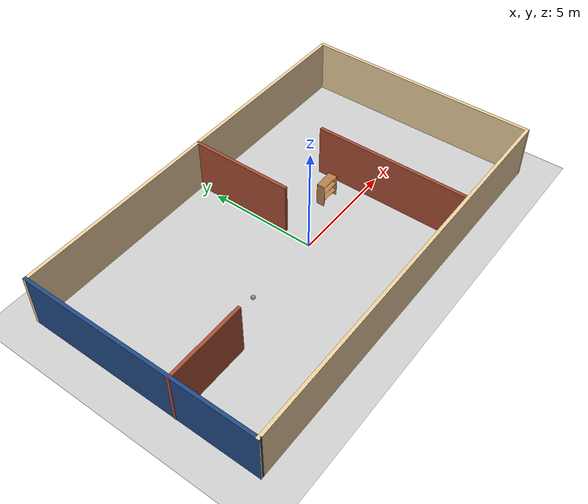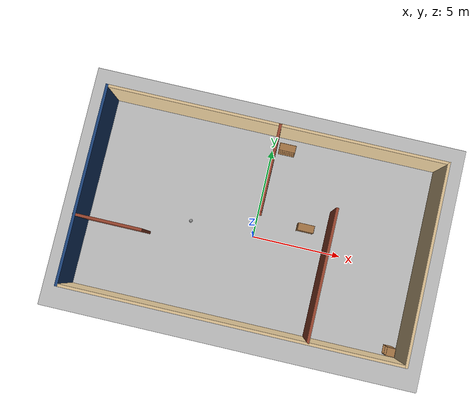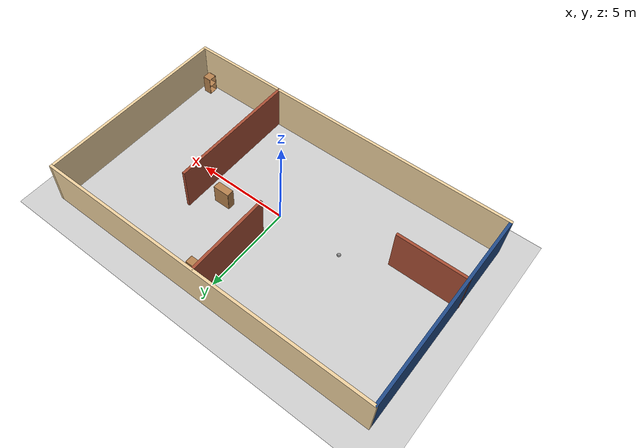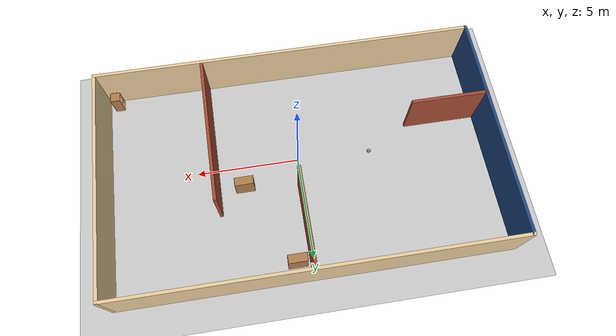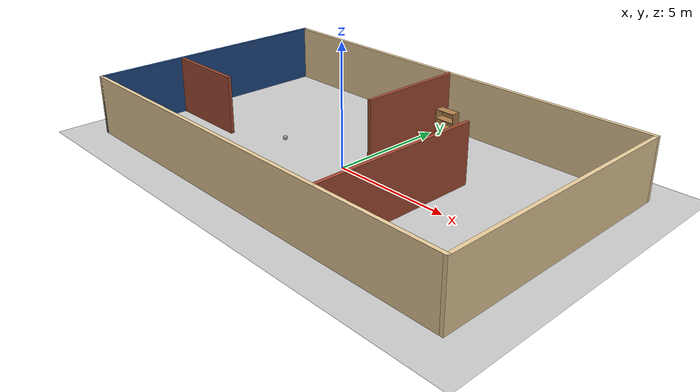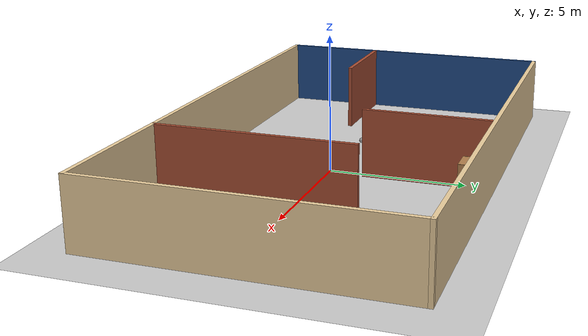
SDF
<sdf version="1.6">
 <world name="default">
  <plugin name="welcomeGazebo" filename="libwelcomeGazebo.so"/>
  <light name="sun" type="directional">
   <pose>0 0 10 0 -0 0</pose>
   <diffuse>0.8 0.8 0.8 1</diffuse>
   <specular>0.2 0.2 0.2 1</specular>
   <attenuation>
    <range>1000</range>
    <constant>0.9</constant>
    <linear>0.01</linear>
    <quadratic>0.001</quadratic>
   </attenuation>
   <direction>-0.5 0.1 -0.9</direction>
  </light>
  <model name="ground_plane">
   <static>1</static>
   <link name="link">
    <collision name="collision">
     <geometry><plane><normal>0 0 1</normal><size>100 100</size></plane></geometry>
     <surface>
      <contact><collide_bitmask>65535</collide_bitmask></contact>
      <friction><ode><mu>100</mu><mu2>50</mu2></ode></friction>
     </surface>
    </collision>
    <visual name="visual">
     <cast_shadows>0</cast_shadows>
     <geometry><plane><normal>0 0 1</normal><size>100 100</size></plane></geometry>
     <material>
      <script><uri>file://media/materials/scripts/gazebo.material</uri><name>Gazebo/Grey</name></script>
     </material>
    </visual>
   </link>
  </model>
  <gravity>0 0 -9.8</gravity>
  <magnetic_field>6e-06 2.3e-05 -4.2e-05</magnetic_field>
  <atmosphere type="adiabatic"/>
  <physics name="default_physics" default="0" type="ode">
   <max_step_size>0.001</max_step_size>
   <real_time_factor>1</real_time_factor>
   <real_time_update_rate>1000</real_time_update_rate>
  </physics>
  <scene><ambient>0.4 0.4 0.4 1</ambient><background>0.7 0.7 0.7 1</background><shadows>1</shadows></scene>
  <audio><device>default</device></audio>
  <spherical_coordinates>
   <surface_model>EARTH_WGS84</surface_model>
   <latitude_deg>0</latitude_deg>
   <longitude_deg>0</longitude_deg>
   <elevation>0</elevation>
   <heading_deg>0</heading_deg>
  </spherical_coordinates>
  <model name="Building_A">
   <pose>-0.058631 0.547242 0 0 -0 0</pose>
   <link name="Wall_0">
    <collision name="Wall_0_Collision">
     <geometry><box><size>11 0.15 2.5</size></box></geometry>
     <pose>0 0 1.25 0 -0 0</pose>
    </collision>
    <visual name="Wall_0_Visual">
     <pose>0 0 1.25 0 -0 0</pose>
     <geometry><box><size>11 0.15 2.5</size></box></geometry>
     <material>
      <script><uri>file://media/materials/scripts/gazebo.material</uri><name>Gazebo/Grey</name></script>
      <ambient>0.12549 0.290196 0.529412 1</ambient>
     </material>
     <meta><layer>0</layer></meta>
    </visual>
    <pose>-9.295 -0 0 0 -0 -1.5708</pose>
   </link>
   <link name="Wall_1">
    <collision name="Wall_1_Collision">
     <geometry><box><size>18.75 0.15 2.5</size></box></geometry>
     <pose>0 0 1.25 0 -0 0</pose>
    </collision>
    <visual name="Wall_1_Visual">
     <pose>0 0 1.25 0 -0 0</pose>
     <geometry><box><size>18.75 0.15 2.5</size></box></geometry>
     <material>
      <script><uri>file://media/materials/scripts/gazebo.material</uri><name>Gazebo/Grey</name></script>
      <ambient>0.921569 0.807843 0.615686 1</ambient>
     </material>
     <meta><layer>0</layer></meta>
    </visual>
    <pose>0.005 -5.425 0 0 -0 0</pose>
   </link>
   <link name="Wall_2">
    <collision name="Wall_2_Collision">
     <geometry><box><size>11 0.15 2.5</size></box></geometry>
     <pose>0 0 1.25 0 -0 0</pose>
    </collision>
    <visual name="Wall_2_Visual">
     <pose>0 0 1.25 0 -0 0</pose>
     <geometry><box><size>11 0.15 2.5</size></box></geometry>
     <material>
      <script><uri>file://media/materials/scripts/gazebo.material</uri><name>Gazebo/Grey</name></script>
      <ambient>0.921569 0.807843 0.615686 1</ambient>
     </material>
     <meta><layer>0</layer></meta>
    </visual>
    <pose>9.305 -0 0 0 -0 1.5708</pose>
   </link>
   <link name="Wall_3">
    <collision name="Wall_3_Collision">
     <geometry><box><size>18.75 0.15 2.5</size></box></geometry>
     <pose>0 0 1.25 0 -0 0</pose>
    </collision>
    <visual name="Wall_3_Visual">
     <pose>0 0 1.25 0 -0 0</pose>
     <geometry><box><size>18.75 0.15 2.5</size></box></geometry>
     <material>
      <script><uri>file://media/materials/scripts/gazebo.material</uri><name>Gazebo/Grey</name></script>
      <ambient>0.921569 0.807843 0.615686 1</ambient>
     </material>
     <meta><layer>0</layer></meta>
    </visual>
    <pose>0.005 5.425 0 0 -0 3.14159</pose>
   </link>
   <link name="Wall_5">
    <collision name="Wall_5_Collision">
     <geometry><box><size>4.75 0.15 2.5</size></box></geometry>
     <pose>0 0 1.25 0 -0 0</pose>
    </collision>
    <visual name="Wall_5_Visual">
     <pose>0 0 1.25 0 -0 0</pose>
     <geometry><box><size>4.75 0.15 2.5</size></box></geometry>
     <material>
      <script><uri>file://media/materials/scripts/gazebo.material</uri><name>Gazebo/Bricks</name></script>
      <ambient>1 1 1 1</ambient>
     </material>
     <meta><layer>0</layer></meta>
    </visual>
    <pose>0.185 3.095 0 0 -0 -1.5708</pose>
   </link>
   <link name="Wall_7">
    <collision name="Wall_7_Collision">
     <geometry><box><size>7.25 0.15 2.5</size></box></geometry>
     <pose>0 0 1.25 0 -0 0</pose>
    </collision>
    <visual name="Wall_7_Visual">
     <pose>0 0 1.25 0 -0 0</pose>
     <geometry><box><size>7.25 0.15 2.5</size></box></geometry>
     <material>
      <script><uri>file://media/materials/scripts/gazebo.material</uri><name>Gazebo/Bricks</name></script>
      <ambient>1 1 1 1</ambient>
     </material>
     <meta><layer>0</layer></meta>
    </visual>
    <pose>4.095 -1.825 0 0 -0 -1.5708</pose>
   </link>
   <link name="Wall_9">
    <collision name="Wall_9_Collision">
     <geometry><box><size>3.75 0.15 2.5</size></box></geometry>
     <pose>0 0 1.25 0 -0 0</pose>
    </collision>
    <visual name="Wall_9_Visual">
     <pose>0 0 1.25 0 -0 0</pose>
     <geometry><box><size>3.75 0.15 2.5</size></box></geometry>
     <material>
      <script><uri>file://media/materials/scripts/gazebo.material</uri><name>Gazebo/Bricks</name></script>
      <ambient>1 1 1 1</ambient>
     </material>
     <meta><layer>0</layer></meta>
    </visual>
    <pose>-7.505 -1.645 0 0 -0 0</pose>
   </link>
   <static>1</static>
  </model>
  <model name="bookshelf">
   <static>1</static>
   <link name="link">
    <inertial><mass>1</mass></inertial>
    <collision name="back">
     <pose>0 0.005 0.6 0 -0 0</pose>
     <geometry><box><size>0.9 0.01 1.2</size></box></geometry>
    </collision>
    <visual name="visual1">
     <pose>0 0.005 0.6 0 -0 0</pose>
     <geometry><box><size>0.9 0.01 1.2</size></box></geometry>
     <material>
      <script><uri>file://media/materials/scripts/gazebo.material</uri><name>Gazebo/Wood</name></script>
     </material>
    </visual>
    <collision name="left_side">
     <pose>0.45 -0.195 0.6 0 -0 0</pose>
     <geometry><box><size>0.02 0.4 1.2</size></box></geometry>
    </collision>
    <visual name="visual2">
     <pose>0.45 -0.195 0.6 0 -0 0</pose>
     <geometry><box><size>0.02 0.4 1.2</size></box></geometry>
     <material>
      <script><uri>file://media/materials/scripts/gazebo.material</uri><name>Gazebo/Wood</name></script>
     </material>
    </visual>
    <collision name="right_side">
     <pose>-0.45 -0.195 0.6 0 -0 0</pose>
     <geometry><box><size>0.02 0.4 1.2</size></box></geometry>
    </collision>
    <visual name="visual3">
     <pose>-0.45 -0.195 0.6 0 -0 0</pose>
     <geometry><box><size>0.02 0.4 1.2</size></box></geometry>
     <material>
      <script><uri>file://media/materials/scripts/gazebo.material</uri><name>Gazebo/Wood</name></script>
     </material>
    </visual>
    <collision name="bottom">
     <pose>0 -0.195 0.03 0 -0 0</pose>
     <geometry><box><size>0.88 0.4 0.06</size></box></geometry>
    </collision>
    <visual name="visual4">
     <pose>0 -0.195 0.03 0 -0 0</pose>
     <geometry><box><size>0.88 0.4 0.06</size></box></geometry>
     <material>
      <script><uri>file://media/materials/scripts/gazebo.material</uri><name>Gazebo/Wood</name></script>
     </material>
    </visual>
    <collision name="top">
     <pose>0 -0.195 1.19 0 -0 0</pose>
     <geometry><box><size>0.88 0.4 0.02</size></box></geometry>
    </collision>
    <visual name="visual5">
     <pose>0 -0.195 1.19 0 -0 0</pose>
     <geometry><box><size>0.88 0.4 0.02</size></box></geometry>
     <material>
      <script><uri>file://media/materials/scripts/gazebo.material</uri><name>Gazebo/Wood</name></script>
     </material>
    </visual>
    <collision name="low_shelf">
     <pose>0 -0.195 0.43 0 -0 0</pose>
     <geometry><box><size>0.88 0.4 0.02</size></box></geometry>
    </collision>
    <visual name="visual6">
     <pose>0 -0.195 0.43 0 -0 0</pose>
     <geometry><box><size>0.88 0.4 0.02</size></box></geometry>
     <material>
      <script><uri>file://media/materials/scripts/gazebo.material</uri><name>Gazebo/Wood</name></script>
     </material>
    </visual>
    <collision name="high_shelf">
     <pose>0 -0.195 0.8 0 -0 0</pose>
     <geometry><box><size>0.88 0.4 0.02</size></box></geometry>
    </collision>
    <visual name="visual7">
     <pose>0 -0.195 0.8 0 -0 0</pose>
     <geometry><box><size>0.88 0.4 0.02</size></box></geometry>
     <material>
      <script><uri>file://media/materials/scripts/gazebo.material</uri><name>Gazebo/Wood</name></script>
     </material>
    </visual>
   </link>
   <pose>0.783037 5.3376 0 0 -0 0</pose>
  </model>
  <model name="bookshelf_0">
   <static>1</static>
   <link name="link">
    <inertial><mass>1</mass></inertial>
    <collision name="back">
     <pose>0 0.005 0.6 0 -0 0</pose>
     <geometry><box><size>0.9 0.01 1.2</size></box></geometry>
    </collision>
    <visual name="visual1">
     <pose>0 0.005 0.6 0 -0 0</pose>
     <geometry><box><size>0.9 0.01 1.2</size></box></geometry>
     <material>
      <script><uri>file://media/materials/scripts/gazebo.material</uri><name>Gazebo/Wood</name></script>
     </material>
    </visual>
    <collision name="left_side">
     <pose>0.45 -0.195 0.6 0 -0 0</pose>
     <geometry><box><size>0.02 0.4 1.2</size></box></geometry>
    </collision>
    <visual name="visual2">
     <pose>0.45 -0.195 0.6 0 -0 0</pose>
     <geometry><box><size>0.02 0.4 1.2</size></box></geometry>
     <material>
      <script><uri>file://media/materials/scripts/gazebo.material</uri><name>Gazebo/Wood</name></script>
     </material>
    </visual>
    <collision name="right_side">
     <pose>-0.45 -0.195 0.6 0 -0 0</pose>
     <geometry><box><size>0.02 0.4 1.2</size></box></geometry>
    </collision>
    <visual name="visual3">
     <pose>-0.45 -0.195 0.6 0 -0 0</pose>
     <geometry><box><size>0.02 0.4 1.2</size></box></geometry>
     <material>
      <script><uri>file://media/materials/scripts/gazebo.material</uri><name>Gazebo/Wood</name></script>
     </material>
    </visual>
    <collision name="bottom">
     <pose>0 -0.195 0.03 0 -0 0</pose>
     <geometry><box><size>0.88 0.4 0.06</size></box></geometry>
    </collision>
    <visual name="visual4">
     <pose>0 -0.195 0.03 0 -0 0</pose>
     <geometry><box><size>0.88 0.4 0.06</size></box></geometry>
     <material>
      <script><uri>file://media/materials/scripts/gazebo.material</uri><name>Gazebo/Wood</name></script>
     </material>
    </visual>
    <collision name="top">
     <pose>0 -0.195 1.19 0 -0 0</pose>
     <geometry><box><size>0.88 0.4 0.02</size></box></geometry>
    </collision>
    <visual name="visual5">
     <pose>0 -0.195 1.19 0 -0 0</pose>
     <geometry><box><size>0.88 0.4 0.02</size></box></geometry>
     <material>
      <script><uri>file://media/materials/scripts/gazebo.material</uri><name>Gazebo/Wood</name></script>
     </material>
    </visual>
    <collision name="low_shelf">
     <pose>0 -0.195 0.43 0 -0 0</pose>
     <geometry><box><size>0.88 0.4 0.02</size></box></geometry>
    </collision>
    <visual name="visual6">
     <pose>0 -0.195 0.43 0 -0 0</pose>
     <geometry><box><size>0.88 0.4 0.02</size></box></geometry>
     <material>
      <script><uri>file://media/materials/scripts/gazebo.material</uri><name>Gazebo/Wood</name></script>
     </material>
    </visual>
    <collision name="high_shelf">
     <pose>0 -0.195 0.8 0 -0 0</pose>
     <geometry><box><size>0.88 0.4 0.02</size></box></geometry>
    </collision>
    <visual name="visual7">
     <pose>0 -0.195 0.8 0 -0 0</pose>
     <geometry><box><size>0.88 0.4 0.02</size></box></geometry>
     <material>
      <script><uri>file://media/materials/scripts/gazebo.material</uri><name>Gazebo/Wood</name></script>
     </material>
    </visual>
   </link>
   <pose>2.74796 1.26281 -0.136568 0 -0 0</pose>
  </model>
  <model name="my_ball">
   <link name="link_0">
    <inertial>
     <mass>1</mass>
     <inertia><ixx>0.1</ixx><ixy>0</ixy><ixz>0</ixz><iyy>0.1</iyy><iyz>0</iyz><izz>0.1</izz></inertia>
    </inertial>
    <visual name="visual">
     <geometry><sphere><radius>0.1</radius></sphere></geometry>
     <material>
      <lighting>1</lighting>
      <script><uri>file://media/materials/scripts/gazebo.material</uri><name>Gazebo/Grey</name></script>
      <shader type="vertex"><normal_map>__default__</normal_map></shader>
      <ambient>1 1 1 1</ambient>
      <diffuse>1 1 1 1</diffuse>
      <specular>1 1 1 1</specular>
      <emissive>1 1 1 1</emissive>
     </material>
    </visual>
    <collision name="collision">
     <geometry><sphere><radius>0.1</radius></sphere></geometry>
     <surface>
      <friction>
       <ode><mu>1</mu><mu2>1</mu2><fdir1>0 0 0</fdir1><slip1>0</slip1><slip2>0</slip2></ode>
       <torsional>
        <coefficient>1</coefficient>
        <patch_radius>0</patch_radius>
        <surface_radius>0</surface_radius>
        <use_patch_radius>1</use_patch_radius>
        <ode><slip>0</slip></ode>
       </torsional>
      </friction>
      <bounce><restitution_coefficient>0</restitution_coefficient><threshold>1e+06</threshold></bounce>
      <contact>
       <collide_without_contact>0</collide_without_contact>
       <collide_without_contact_bitmask>1</collide_without_contact_bitmask>
       <collide_bitmask>1</collide_bitmask>
       <ode>
        <soft_cfm>0</soft_cfm>
        <soft_erp>0.2</soft_erp>
        <kp>1e+13</kp>
        <kd>1</kd>
        <max_vel>0.01</max_vel>
        <min_depth>0</min_depth>
       </ode>
       <bullet>
        <split_impulse>1</split_impulse>
        <split_impulse_penetration_threshold>-0.01</split_impulse_penetration_threshold>
        <soft_cfm>0</soft_cfm>
        <soft_erp>0.2</soft_erp>
        <kp>1e+13</kp>
        <kd>1</kd>
       </bullet>
      </contact>
     </surface>
    </collision>
   </link>
   <static>0</static>
   <pose>-3.609 0.075153 0.1 0 -0 0</pose>
  </model>
  <model name="cabinet">
   <static>1</static>
   <link name="cabinet_bottom_plate">
    <inertial>
     <pose>0 0 -1 0 -0 0</pose>
     <inertia><ixx>2.05</ixx><ixy>0</ixy><ixz>0</ixz><iyy>2.05</iyy><iyz>0</iyz><izz>2.05</izz></inertia>
     <mass>25</mass>
    </inertial>
    <collision name="cabinet_bottom_plate_geom">
     <pose>0 0 0.01 0 -0 0</pose>
     <geometry><box><size>0.45 0.45 0.02</size></box></geometry>
    </collision>
    <visual name="cabinet_bottom_plate_geom_visual">
     <pose>0 0 0.01 0 -0 0</pose>
     <geometry><box><size>0.45 0.45 0.02</size></box></geometry>
     <material>
      <script><uri>file://media/materials/scripts/gazebo.material</uri><name>Gazebo/Wood</name></script>
     </material>
    </visual>
    <collision name="cabinet_bottom_plate_geom_cabinet_back_plate">
     <pose>0.235 0 0.51 0 -0 0</pose>
     <geometry><box><size>0.02 0.45 1.02</size></box></geometry>
    </collision>
    <visual name="cabinet_bottom_plate_geom_cabinet_back_plate_visual">
     <pose>0.235 0 0.51 0 -0 0</pose>
     <geometry><box><size>0.02 0.45 1.02</size></box></geometry>
     <material>
      <script><uri>file://media/materials/scripts/gazebo.material</uri><name>Gazebo/Wood</name></script>
     </material>
    </visual>
    <collision name="cabinet_bottom_plate_geom_cabinet_left_plate">
     <pose>0 0.235 0.51 0 -0 0</pose>
     <geometry><box><size>0.45 0.02 1.02</size></box></geometry>
    </collision>
    <visual name="cabinet_bottom_plate_geom_cabinet_left_plate_visual">
     <pose>0 0.235 0.51 0 -0 0</pose>
     <geometry><box><size>0.45 0.02 1.02</size></box></geometry>
     <material>
      <script><uri>file://media/materials/scripts/gazebo.material</uri><name>Gazebo/Wood</name></script>
     </material>
    </visual>
    <collision name="cabinet_bottom_plate_geom_cabinet_middle_plate">
     <pose>0 0 0.51 0 -0 0</pose>
     <geometry><box><size>0.45 0.45 0.02</size></box></geometry>
    </collision>
    <visual name="cabinet_bottom_plate_geom_cabinet_middle_plate_visual">
     <pose>0 0 0.51 0 -0 0</pose>
     <geometry><box><size>0.45 0.45 0.02</size></box></geometry>
     <material>
      <script><uri>file://media/materials/scripts/gazebo.material</uri><name>Gazebo/Wood</name></script>
     </material>
    </visual>
    <collision name="cabinet_bottom_plate_geom_cabinet_right_plate">
     <pose>0 -0.235 0.51 0 -0 0</pose>
     <geometry><box><size>0.45 0.02 1.02</size></box></geometry>
    </collision>
    <visual name="cabinet_bottom_plate_geom_cabinet_right_plate_visual">
     <pose>0 -0.235 0.51 0 -0 0</pose>
     <geometry><box><size>0.45 0.02 1.02</size></box></geometry>
     <material>
      <script><uri>file://media/materials/scripts/gazebo.material</uri><name>Gazebo/Wood</name></script>
     </material>
    </visual>
    <collision name="cabinet_bottom_plate_geom_cabinet_top_plate">
     <pose>0 0 1.01 0 -0 0</pose>
     <geometry><box><size>0.45 0.45 0.02</size></box></geometry>
    </collision>
    <visual name="cabinet_bottom_plate_geom_cabinet_top_plate_visual">
     <pose>0 0 1.01 0 -0 0</pose>
     <geometry><box><size>0.45 0.45 0.02</size></box></geometry>
     <material>
      <script><uri>file://media/materials/scripts/gazebo.material</uri><name>Gazebo/Wood</name></script>
     </material>
    </visual>
   </link>
   <pose>8.67837 -4.45429 0 0 -0 0</pose>
  </model>
  <plugin filename="libcollision_map_creator.so" name="collision_map_creator"/>
 </world>
</sdf>
